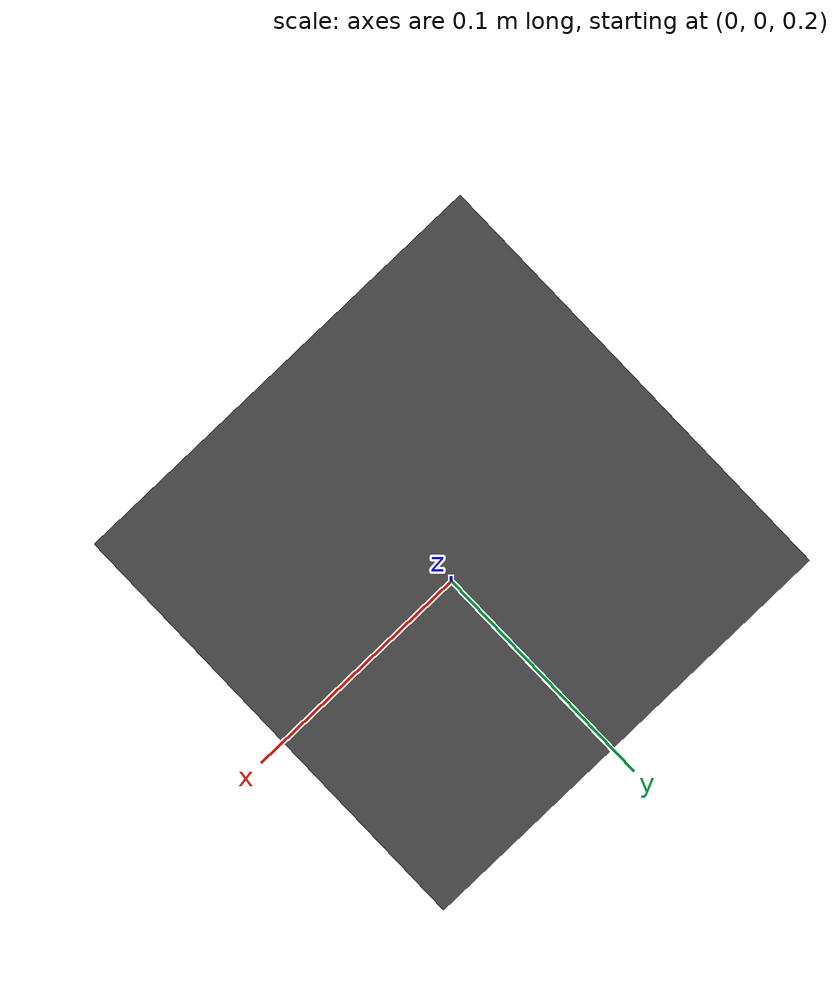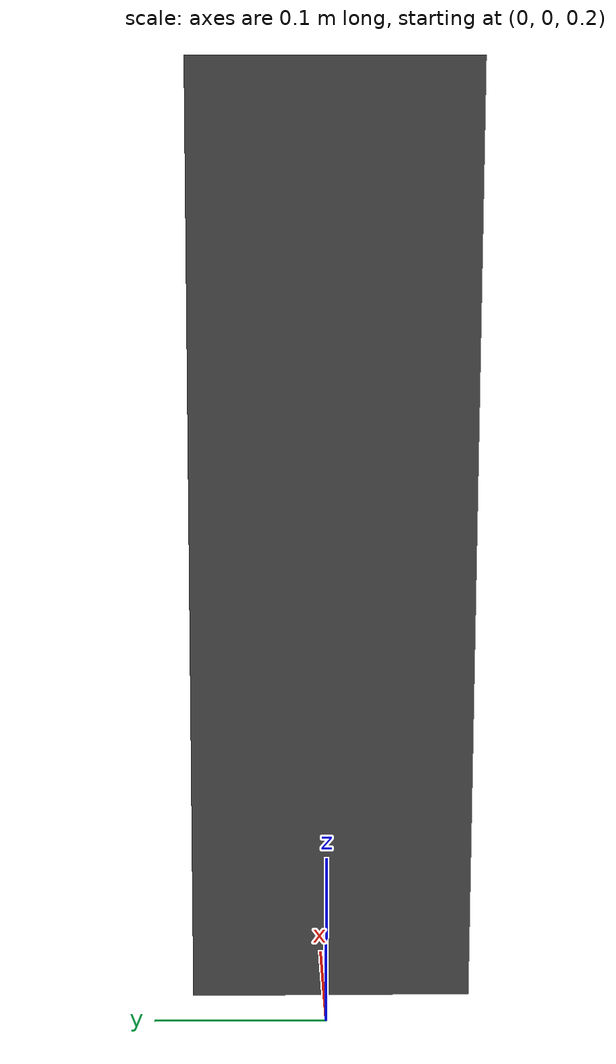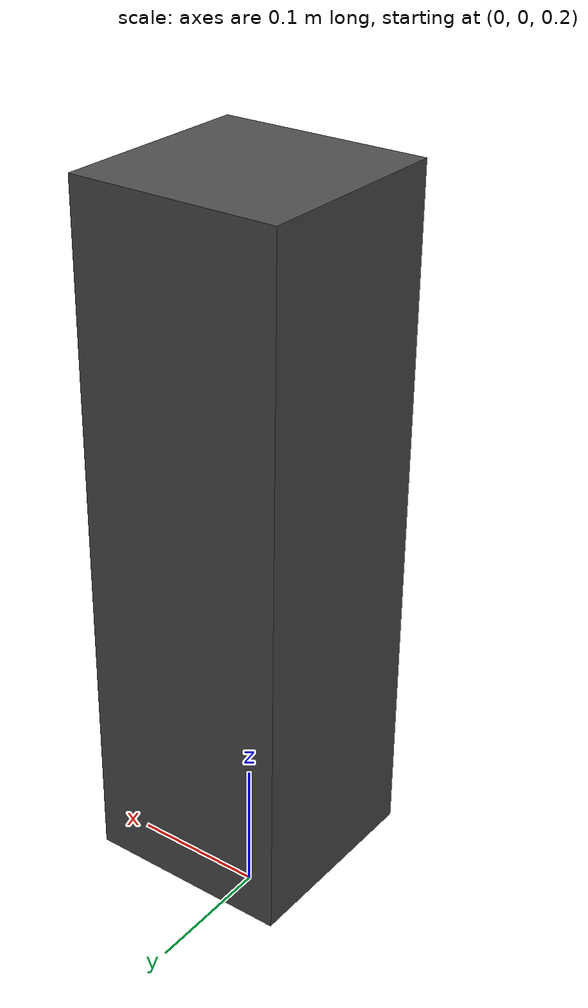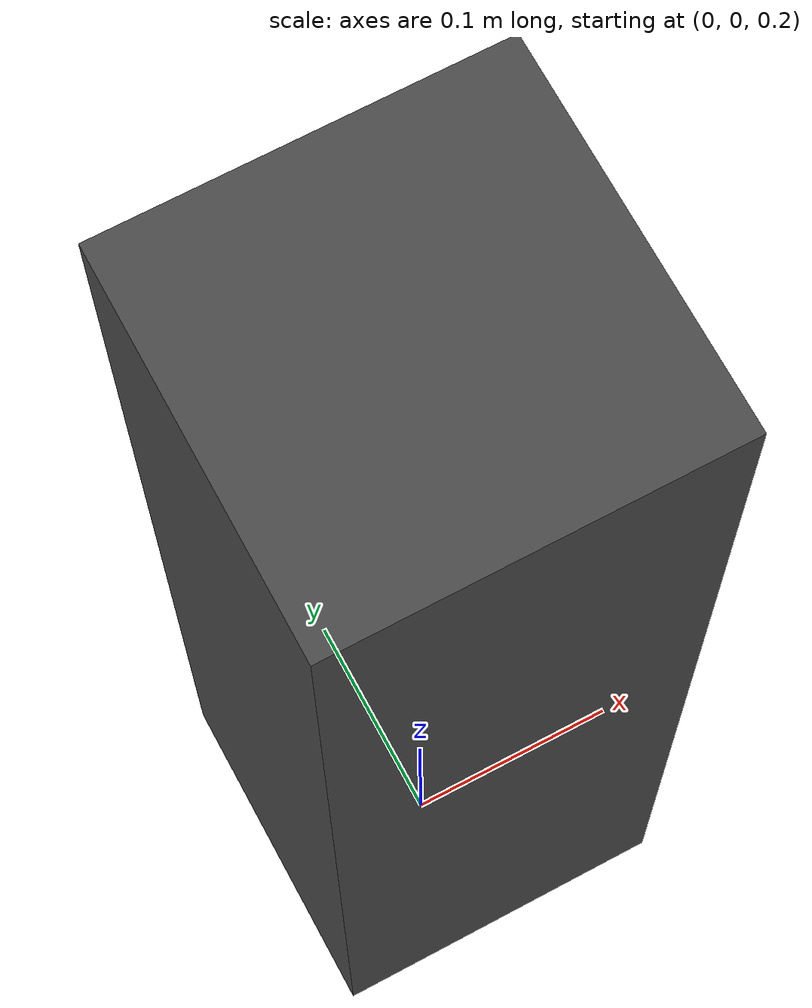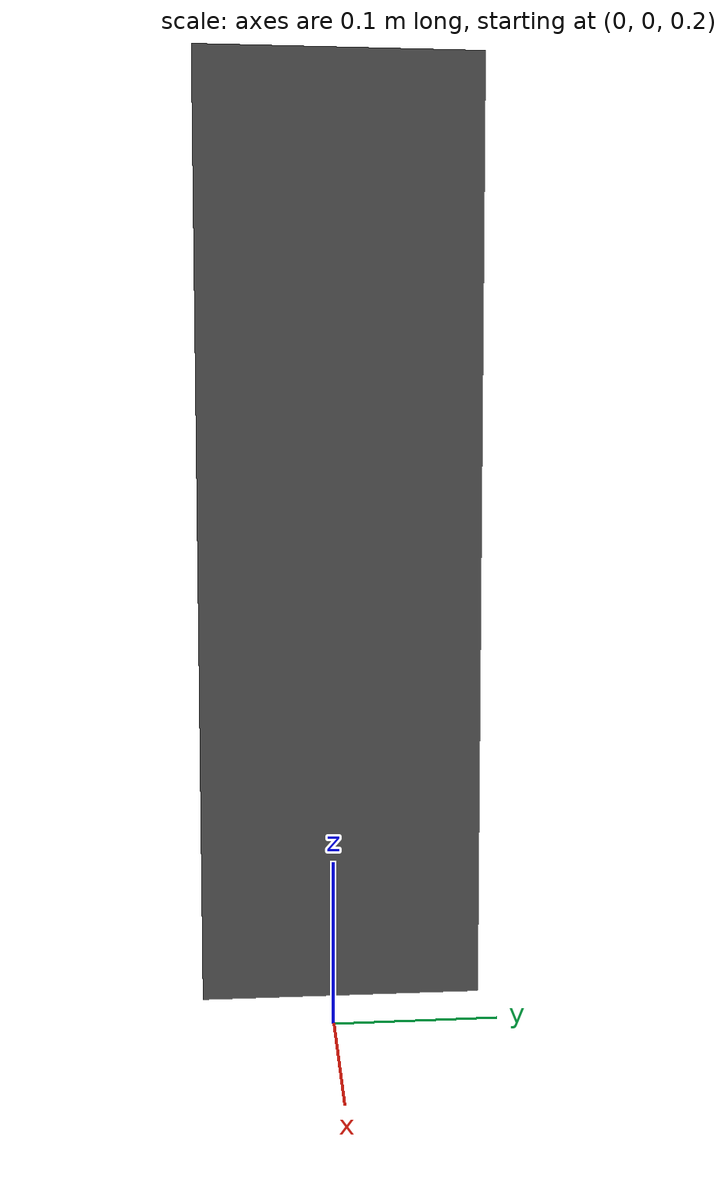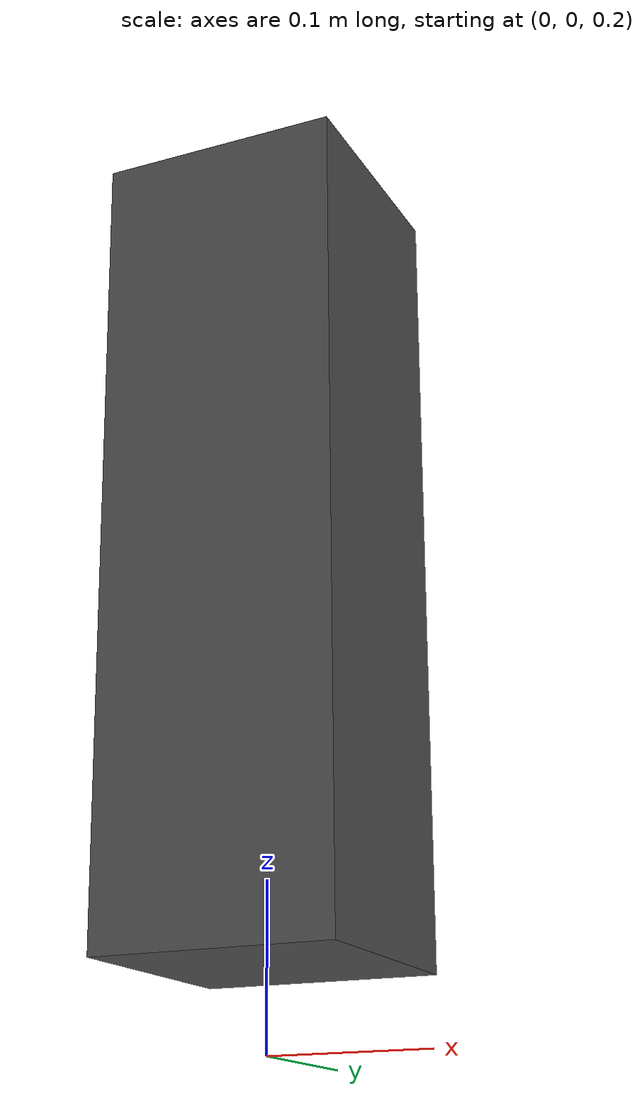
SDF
<?xml version='1.0'?>
<sdf version='1.6'>
  <model name='column'>
    <pose frame=''>0 0 0.5 0 -0 0</pose>
    <link name='Wall_45'>
      <collision name='Wall_45_Collision'>
        <geometry>
          <box>
            <size>0.15 0.15 0.5</size>
          </box>
        </geometry>
        <pose frame=''>0 0 0 0 -0 0</pose>
      </collision>
      <visual name='Wall_45_Visual'>
        <pose frame=''>0 0 0 0 -0 0</pose>
        <geometry>
          <box>
            <size>0.15 0.15 0.5</size>
          </box>
        </geometry>
        <material>
          <script>
            <uri>file://media/materials/scripts/gazebo.material</uri>
            <name>Gazebo/DarkGrey</name>
          </script>
          <ambient>1 1 1 1</ambient>
        </material>
        <meta>
          <layer>0</layer>
        </meta>
      </visual>
      <pose frame=''>0 0 0 0 -0 0</pose>
    </link>
    <static>1</static>
  </model>
</sdf>
